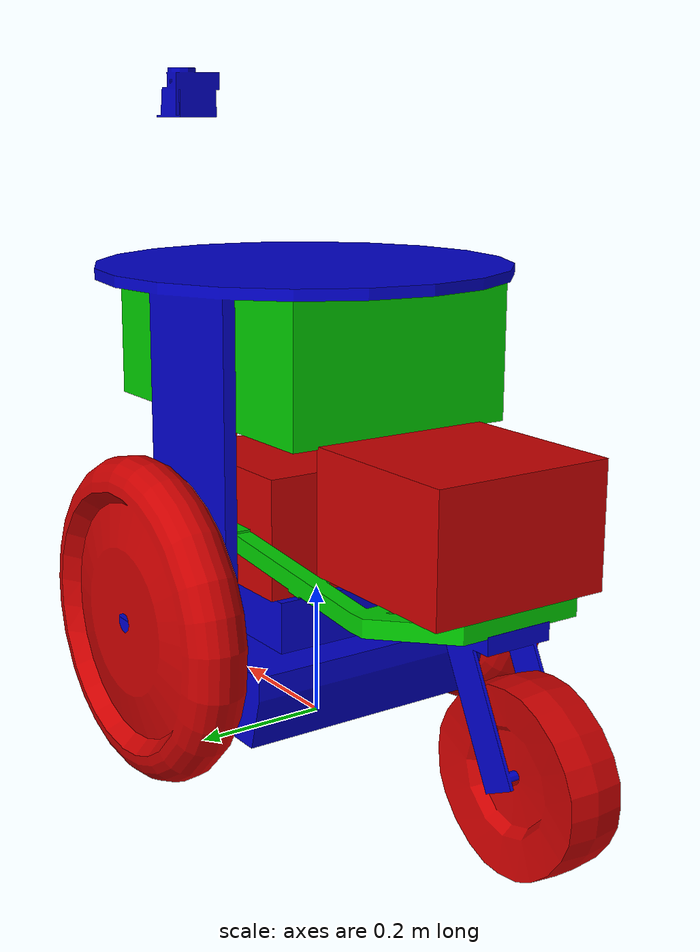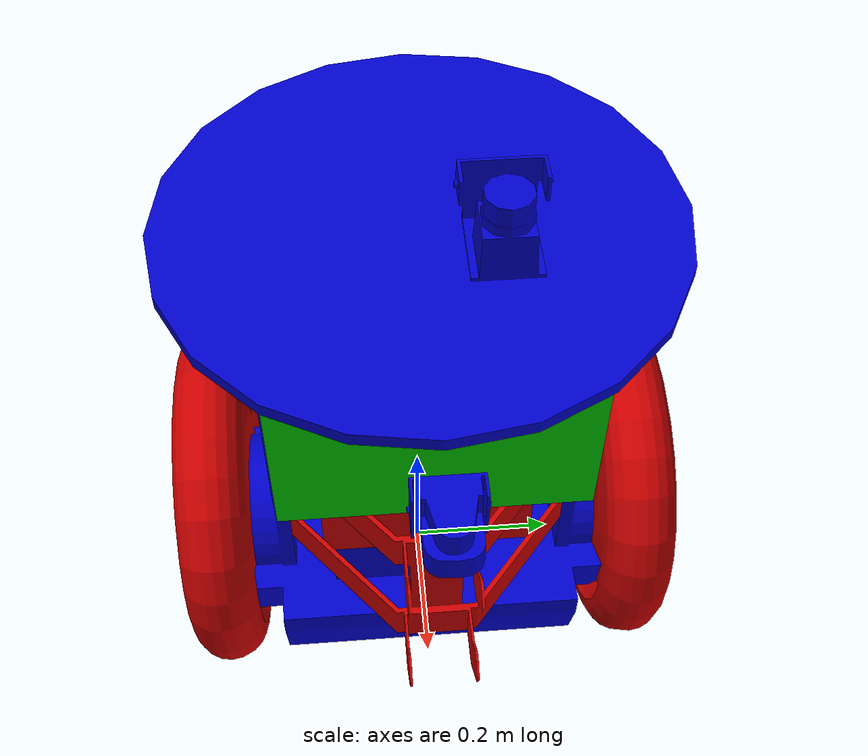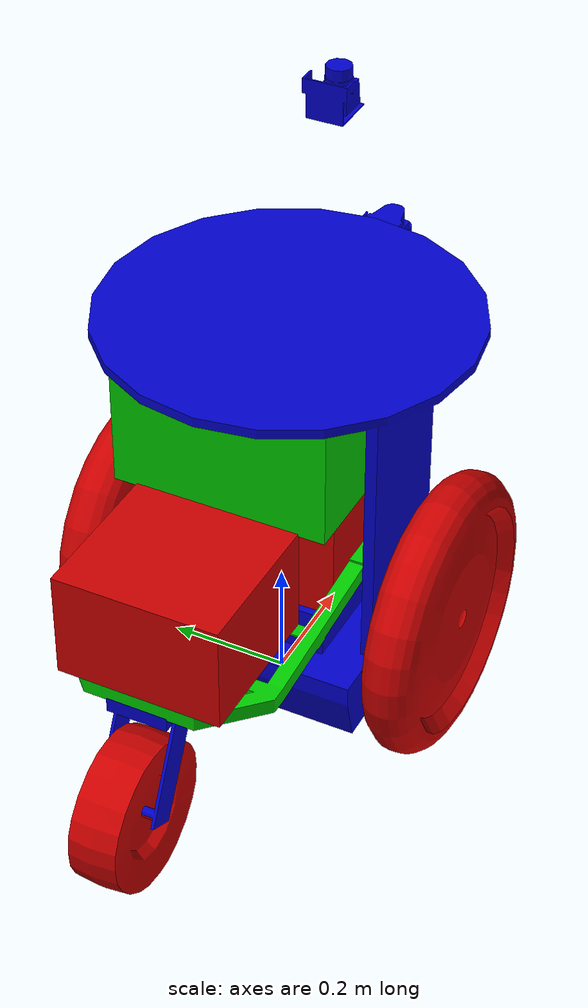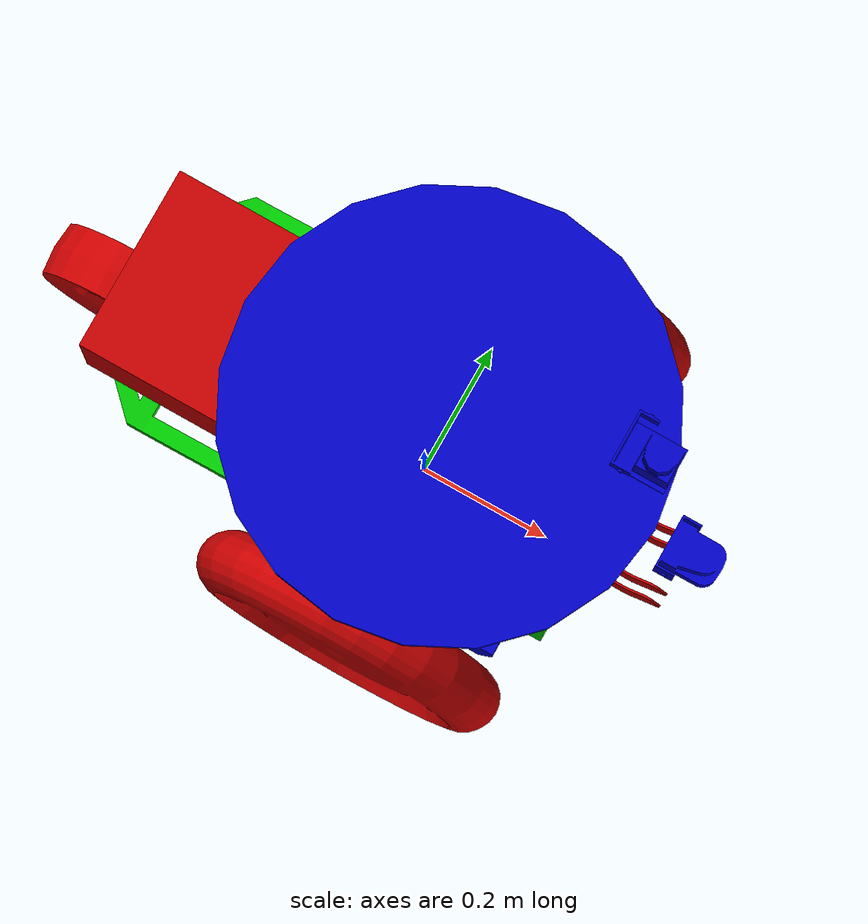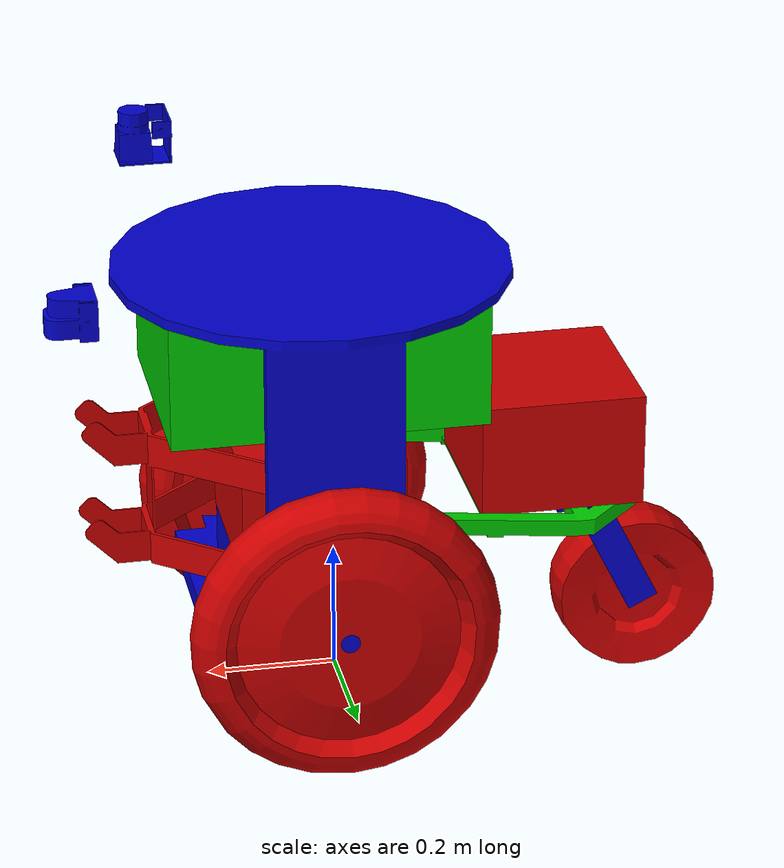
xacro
<?xml version="1.0"?>
<robot name="segbot"
	xmlns:sensor="http://playerstage.sourceforge.net/gazebo/xmlschema/#sensor"
	xmlns:controller="http://playerstage.sourceforge.net/gazebo/xmlschema/#controller"
	xmlns:interface="http://playerstage.sourceforge.net/gazebo/xmlschema/#interface">

	<!-- include gazebo defs-->
	<include filename="$(find segbot_description)/urdf/gazebo.urdf"/>

	<!-- include base defs-->
	<include filename="$(find segbot_description)/urdf/base_table_mounted_laser.urdf"/>

	<!-- include sensors defs-->
	<include filename="$(find segbot_description)/urdf/sensors.urdf"/>
</robot>

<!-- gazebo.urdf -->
<robot name="gazebo"
	xmlns:sensor="http://playerstage.sourceforge.net/gazebo/xmlschema/#sensor"
	xmlns:controller="http://playerstage.sourceforge.net/gazebo/xmlschema/#controller"
	xmlns:interface="http://playerstage.sourceforge.net/gazebo/xmlschema/#interface">

  <material name="Blue">
    <color rgba="0.0 0.0 0.8 1.0"/>
  </material>
  <material name="Green">
    <color rgba="0.0 0.8 0.0 1.0"/>
  </material>
  <material name="Red">
    <color rgba="0.8 0.0 0.0 1.0"/>
  </material>
  <material name="White">
    <color rgba="0.0 0.0 0.0 1.0"/>
  </material>

  <gazebo>
    <controller:gazebo_ros_controller_manager name="gazebo_ros_controller_manager" plugin="libgazebo_ros_controller_manager.so">
      <alwaysOn>true</alwaysOn>
      <updateRate>1000.0</updateRate>
      <interface:audio name="gazebo_ros_controller_manager_dummy_iface" />
    </controller:gazebo_ros_controller_manager>
  </gazebo>

</robot>

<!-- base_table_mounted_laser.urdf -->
<robot name="base"
       xmlns:sensor="http://playerstage.sourceforge.net/gazebo/xmlschema/#sensor"
       xmlns:controller="http://playerstage.sourceforge.net/gazebo/xmlschema/#controller"
       xmlns:xacro="http://ros.org/wiki/fixme"
       xmlns:interface="http://playerstage.sourceforge.net/gazebo/xmlschema/#interface">>

<!-- JOINT LIMIT VALUES FOR EFFORT AND VELOCITY NEED TO BE ADDED FOR REVOLUTE AND CONTINUOUS JOINTS -->

  <!-- base_footprint is a fictitious link(frame) that is on the ground right below base_link origin,
       navigation stack dedpends on this frame -->
  <link name="base_footprint">
    <inertial>
      <mass value="0.000001" />
      <origin xyz="0 0 0" />
      <inertia ixx="0.01" ixy="0.0" ixz="0.0"
               iyy="0.01" iyz="0.0" izz="0.01" />
    </inertial>
    <visual>
      <origin xyz="0 0 0" rpy="0 0 0" />
      <geometry>
        <box size="0.0 0.0 0.0" />
      </geometry>

      <material name="Green" />
    </visual>
    <collision>
      <!-- represent base collision with a simple rectangular model, positioned by base_size_z s.t. top
           surface of the collision box matches the top surface of the PR2 base -->
      <origin xyz="0 0 0" rpy="0 0 0" />
      <geometry>
        <box size="0.00 0.00 0.00" />
      </geometry>
    </collision>
  </link>

  <!-- Base -->

  <!-- Links -->
  <link name="base_link">
    <inertial>
      <origin xyz="0 -0.3 0" rpy="0 0 0" />
      <mass value="90.72"/>
      <inertia ixx="1.2285"  ixy="0"  ixz="0" iyy="1.961064" iyz="0" izz="1.337364" />
    </inertial>

    <visual>
      <origin xyz="0 0 0" rpy="0 0 0" />
      <geometry name="segway_base_geom">
        <mesh filename="package://segway_robot/meshes/segway_base.stl" />
      </geometry>
      <material name="Blue" />
    </visual>

    <collision>
      <origin xyz="0 0 0" rpy="0 0 0" />
      <geometry name="segway_base_collision_geom">
      <mesh filename="package://segway_robot/meshes/convex/segway_base_convex.stlb" />
      </geometry>
    </collision>

  </link>

  <link name="segway_left_wheel">
    <inertial>
      <origin xyz="0 0 0" rpy="0 0 0" />
      <mass value="3.87"/>
      <inertia ixx="0.0852"  ixy="0"  ixz="0" iyy="0.0852" iyz="0" izz="0.1654" />
    </inertial>

    <visual>
      <origin xyz="0 0 0" rpy="0 0 0" />
      <geometry name="segway_left_wheel_geom">
        <mesh filename="package://segway_robot/meshes/segway_wheel.stl" />
      </geometry>
      <material name="Red" />
    </visual>

    <collision>
      <origin xyz="0 0 0" rpy="0 0 0" />
      <geometry name="segway_left_wheel_collision_geom">
      	<cylinder radius="0.2365" length="0.093"/>
      </geometry>
    </collision>

  </link>

  <link name="segway_right_wheel">
    <inertial>
      <origin xyz="0 0 0" rpy="0 0 0" />
      <mass value="3.87"/>
      <inertia ixx="0.0852"  ixy="0"  ixz="0" iyy="0.0852" iyz="0" izz="0.1654" />
    </inertial>

    <visual>
      <origin xyz="0 0 0" rpy="0 0 0" />
      <geometry name="segway_right_wheel_geom">
        <mesh filename="package://segway_robot/meshes/segway_wheel.stl"/>
      </geometry>
      <material name="Red" />
    </visual>

    <collision>
      <origin xyz="0 0 0" rpy="0 0 0" />
      <geometry name="segway_right_wheel_collision_geom">
      	<cylinder radius="0.2365" length="0.093"/>
      </geometry>
    </collision>

  </link>

  <link name="segway_trailer">
    <inertial>
      <origin xyz="0.15 0.075 0" rpy="0 0 0" />
      <mass value="34.54"/>
      <inertia ixx="0.288"  ixy="0"  ixz="0" iyy="0.547" iyz="0" izz="0.446" />
    </inertial>

    <visual>
      <origin xyz="0 0 0" rpy="0 0 0" />
      <geometry name="segway_trailer-geom">
          <mesh filename="package://segway_robot/meshes/trailer.stl" />
      </geometry>
      <material name="Green" />
    </visual>

    <collision>
      <origin xyz="0 0 0" rpy="0 0 0" />
      <geometry name="segway_trailer_collision_geom">
        <mesh filename="package://segway_robot/meshes/convex/trailer_convex.stlb" />
      </geometry>
    </collision>

  </link>

  <link name="segway_trailer_wheel_caster">
    <inertial>
      <origin xyz="0 0 0" rpy="0 0 0" />
      <mass value="1.2"/>
      <inertia ixx="0.01"  ixy="0"  ixz="0" iyy="0.01" iyz="0" izz="0.01" />
    </inertial>

    <visual>
      <origin xyz="0 0 0" rpy="0 0 0" />
      <geometry name="segway_trailer_wheel_caster-geom">
          <mesh filename="package://segway_robot/meshes/trailer_wheel_caster.stl" />
      </geometry>
      <material name="Blue" />
    </visual>

    <collision>
      <origin xyz="0 0 0" rpy="0 0 0" />
      <geometry name="segway_trailer_wheel_caster_collision_geom">
        <mesh filename="package://segway_robot/meshes/convex/trailer_wheel_caster_convex.stlb" />
      </geometry>
    </collision>

  </link>

  <link name="segway_trailer_wheel">
    <inertial>
      <origin xyz="0 0 0" rpy="0 0 0" />
      <mass value="2.5"/>
      <inertia ixx="0.042"  ixy="0"  ixz="0" iyy="0.042" iyz="0" izz="0.082" />
    </inertial>

    <visual>
      <origin xyz="0 0 0" rpy="0 0 0" />
      <geometry name="segway_trailer_wheel-geom">
          <mesh filename="package://segway_robot/meshes/trailer_wheel.stl" />
      </geometry>
      <material name="Red" />
    </visual>

    <collision>
      <origin xyz="0 0 0" rpy="0 0 0" />
      <geometry name="segway_trailer_wheel_collision_geom">
        <cylinder radius="0.1285" length="0.097"/>
      </geometry>
    </collision>

  </link>

  <link name="battery_one">
    <inertial>
      <origin xyz="0 0 0" rpy="0 0 0" />
      <mass value="22.68"/>
      <inertia ixx="0.201"  ixy="0"  ixz="0" iyy="0.263" iyz="0" izz="0.182" />
    </inertial>

    <visual>
      <origin xyz="0 0 0" rpy="0 0 0" />
      <geometry name="battery_one_geom">
	<box size = "0.254 0.178 0.273" />
      </geometry>
      <material name="Red" />
    </visual>

    <collision>
      <origin xyz="0 0 0" rpy="0 0 0" />
      <geometry name="battery_one_collision_geom">
	<box size = "0.254 0.178 0.273" />
      </geometry>
    </collision>

  </link>

  <link name="battery_two">
    <inertial>
      <origin xyz="0 0 0" rpy="0 0 0" />
      <mass value="22.68"/>
      <inertia ixx="0.201"  ixy="0"  ixz="0" iyy="0.263" iyz="0" izz="0.182" />
    </inertial>

    <visual>
      <origin xyz="0 0 0" rpy="0 0 0" />
      <geometry name="battery_two_geom">
	<box size = "0.254 0.178 0.273" />
      </geometry>
      <material name="Red" />
    </visual>

    <collision>
      <origin xyz="0 0 0" rpy="0 0 0" />
      <geometry name="battery_two_collision_geom">
	<box size = "0.254 0.178 0.273" />
      </geometry>
    </collision>

  </link>

  <link name="computer">
    <inertial>
      <origin xyz="0 0 0" rpy="0 0 0" />
      <mass value="4.54"/>
      <inertia ixx="0.063"  ixy="0"  ixz="0" iyy="0.136" iyz="0" izz="0.103" />
    </inertial>

    <visual>
      <origin xyz="0 0 0" rpy="0 0 0" />
      <geometry name="computer_geom">
	<box size = "0.484 0.198 0.356" />
      </geometry>
      <material name="Green" />
    </visual>

    <collision>
      <origin xyz="0 0 0" rpy="0 0 0" />
      <geometry name="segway_base_collision_geom">
	<box size = "0.484 0.198 0.356" />
      </geometry>
    </collision>

  </link>

  <link name="segway_laser_bracket">
    <inertial>
      <origin xyz="0 0 0" rpy="0 0 0" />
      <mass value="2.27"/>
      <inertia ixx="0.01"  ixy="0"  ixz="0" iyy="0.01" iyz="0" izz="0.01" />
    </inertial>

    <visual>
      <origin xyz="0 0 0" rpy="0 0 0" />
      <geometry name="segway_laser_bracket-geom">
          <mesh filename="package://segway_robot/meshes/laser_bracket.stl" />
      </geometry>
      <material name="Red" />
    </visual>

    <collision>
      <origin xyz="0 0 0" rpy="0 0 0" />
      <geometry name="segway_laser_bracket_collision_geom">
      <mesh filename="package://segway_robot/meshes/convex/laser_bracket_convex.stlb" />
      </geometry>
    </collision>

  </link>

  <link name="R283_hokuyo_laser1">
    <inertial>
      <origin xyz="-0.025 -0.017 0" rpy="0 0 0" />
      <mass value="0.37"/>
      <inertia ixx="0.0004"  ixy="0"  ixz="0" iyy="0.0004" iyz="0" izz="0.0004" />
    </inertial>

    <visual>
      <origin xyz="0 0 0" rpy="0 0 0" />
      <geometry name="R283_hokuyo_laser1-geom">
          <mesh filename="package://segway_robot/meshes/R283_hokuyo_laser1.stl" />
      </geometry>
      <material name="Blue" />
    </visual>

    <collision>
      <origin xyz="0 0 0" rpy="0 0 0" />
      <geometry name="R283_hokuyo_laser1_collision_geom">
      <mesh filename="package://segway_robot/meshes/convex/R283_hokuyo_laser1_convex.stlb" />
      </geometry>
    </collision>

  </link>

  <link name="R313_hokuyo_laser2">
    <inertial>
      <origin xyz="-0.023 0 0" rpy="3.14159 0 0" />
      <mass value="0.37"/>
      <inertia ixx="0.0004"  ixy="0"  ixz="0" iyy="0.0004" iyz="0" izz="0.0004" />
    </inertial>

    <visual>
      <origin xyz="0 0 0" rpy="3.14159 0 0" />
      <geometry name="R313_hokuyo_laser2-geom">
          <mesh filename="package://segway_robot/meshes/R313_hokuyo_laser2.stl" />
      </geometry>
      <material name="Blue" />
    </visual>

    <collision>
      <origin xyz="0 0 0" rpy="3.14159 0 0" />
      <geometry name="R283_hokuyo_laser1_collision_geom">
      <mesh filename="package://segway_robot/meshes/convex/R313_hokuyo_laser2_convex.stlb" />
      </geometry>
    </collision>

  </link>

  <!-- Joints -->

  <joint name="base_footprint_joint" type="fixed">
    <origin xyz="0 0 0.55" rpy="1.57 0 3.14" />
    <child link="base_link" />
    <parent link="base_footprint"/>
  </joint>

  <joint name="segway_left_wheel_joint" type="continuous" >
    <origin xyz="-0.031 -0.353 0.272" rpy="0 0 0"/>
    <axis xyz="0 0 1"/>
    <limit effort="122" velocity="500"/>
    <parent link="base_link" />
    <child link="segway_left_wheel" />
    <calibration reference_position="0.0"/>
  </joint>

  <joint name="segway_right_wheel_joint" type="continuous" >
    <origin xyz="-0.031 -0.353 -0.272" rpy="0 3.14 0"/>
    <axis xyz="0 0 1"/>
    <limit effort="122" velocity="500"/>
    <parent link="base_link" />
    <child link="segway_right_wheel" />
    <calibration reference_position="0.0"/>
  </joint>

  <joint name="segway_trailer_joint" type="fixed">
    <origin xyz="0.162 -0.233 0.002" rpy="0 0 0" />
    <parent link="base_link" />
    <child link="segway_trailer" />
    <calibration reference_position="0.0"/>
  </joint>

  <joint name="segway_trailer_wheel_caster_joint" type="continuous">
    <origin xyz="0.244 -0.038 0.002" rpy="0 0 0" />
    <axis xyz="0 1 0"/>
    <parent link="segway_trailer" />
    <child link="segway_trailer_wheel_caster" />
    <calibration reference_position="0.0"/>
  </joint>

  <joint name="segway_trailer_wheel_joint" type="continuous">
    <origin xyz="0.076 -0.187 0.002" rpy="0 0 0" />
    <axis xyz="0 0 1"/>
    <parent link="segway_trailer_wheel_caster" />
    <child link="segway_trailer_wheel" />
    <calibration reference_position="0.0"/>
  </joint>

  <joint name="battery_one_joint" type="fixed">
    <origin xyz="-0.037 -0.231 0" rpy="0 0 0" />
    <parent link="base_link" />
    <child link="battery_one" />
    <calibration reference_position="0.0"/>
  </joint>

  <joint name="battery_two_joint" type="fixed">
    <origin xyz="0.171 0.074 0" rpy="0 0 0" />
    <parent link="segway_trailer" />
    <child link="battery_two" />
    <calibration reference_position="0.0"/>
  </joint>

  <joint name="computer_joint" type="fixed">
    <origin xyz="-0.033 0.025 0" rpy="0 0 0" />
    <parent link="base_link" />
    <child link="computer" />
    <calibration reference_position="0.0"/>
  </joint>

  <joint name="segway_laser_bracket_joint" type="fixed">
    <origin xyz="-0.213 -0.2 0.002" rpy="0 0 0" />
    <parent link="base_link" />
    <child link="segway_laser_bracket" />
    <calibration reference_position="0.0"/>
  </joint>

  <joint name="R283_hokuyo_laser1_joint" type="revolute">
    <origin xyz="-0.052 0.598 0.05" rpy="0 0 0" />
    <axis xyz="0 0 1"/>
    <limit lower="-1.047" upper="1.047" effort="50" velocity="50"/>
    <parent link="segway_laser_bracket" />
    <child link="R283_hokuyo_laser1" />
    <calibration reference_position="0.0"/>
  </joint>

  <joint name="R313_hokuyo_laser2_joint" type="revolute">
    <origin xyz="-0.162 0.283 0" rpy="3.14159 0 0" />
    <axis xyz="0 0 1"/>
    <limit lower="-1.047" upper="1.047" effort="50" velocity="50"/>
    <parent link="segway_laser_bracket" />
    <child link="R313_hokuyo_laser2" />
    <calibration reference_position="0.0"/>
  </joint>

  <!-- Gazebo uses this to color -->

  <gazebo reference="base_link">
    <material value="Gazebo/Blue"/>
    <turnGravityOff>false</turnGravityOff>
  </gazebo>

  <gazebo reference="segway_left_wheel">
    <material value="Gazebo/Red"/>
    <turnGravityOff>false</turnGravityOff>
  </gazebo>

  <gazebo reference="segway_right_wheel">
    <material value="Gazebo/Red"/>
    <turnGravityOff>false</turnGravityOff>
  </gazebo>

  <gazebo reference="segway_trailer">
    <material value="Gazebo/Green"/>
    <turnGravityOff>false</turnGravityOff>
  </gazebo>

  <gazebo reference="segway_trailer_wheel_caster">
    <material value="Gazebo/Blue"/>
    <turnGravityOff>false</turnGravityOff>
  </gazebo>

  <gazebo reference="segway_trailer_wheel">
    <material value="Gazebo/Red"/>
    <turnGravityOff>false</turnGravityOff>
  </gazebo>

  <gazebo reference="battery_one">
    <material value="Gazebo/Red"/>
    <turnGravityOff>false</turnGravityOff>
  </gazebo>

  <gazebo reference="battery_two">
    <material value="Gazebo/Red"/>
    <turnGravityOff>false</turnGravityOff>
  </gazebo>

  <gazebo reference="computer">
    <material value="Gazebo/Green"/>
    <turnGravityOff>false</turnGravityOff>
  </gazebo>

  <gazebo reference="segway_laser_bracket">
    <material value="Gazebo/Green"/>
    <turnGravityOff>false</turnGravityOff>
  </gazebo>

  <gazebo reference="R283_hokuyo_laser1">
    <material value="Gazebo/Red"/>
    <turnGravityOff>false</turnGravityOff>
  </gazebo>

  <gazebo reference="R313_hokuyo_laser2">
    <material value="Gazebo/Red"/>
    <turnGravityOff>false</turnGravityOff>
  </gazebo>

  <!-- Transmits the joints -->

  <transmission name="segway_left_wheel_trans" type="SimpleTransmission">
    <actuator name="segway_left_wheel_motor"/>
    <joint name="segway_left_wheel_joint"/>
    <mechanicalReduction>1.0</mechanicalReduction>
  </transmission>

  <transmission name="segway_right_wheel_trans" type="SimpleTransmission">
    <actuator name="segway_right_wheel_motor"/>
    <joint name="segway_right_wheel_joint"/>
    <mechanicalReduction>1.0</mechanicalReduction>
  </transmission>

  <transmission name="segway_trailer_wheel_caster_trans" type="SimpleTransmission">
    <actuator name="segway_trailer_wheel_caster_motor"/>
    <joint name="segway_trailer_wheel_caster_joint"/>
    <mechanicalReduction>1.0</mechanicalReduction>
  </transmission>

  <transmission name="segway_trailer_wheel_trans" type="SimpleTransmission">
    <actuator name="segway_trailer_wheel_motor"/>
    <joint name="segway_trailer_wheel_joint"/>
    <mechanicalReduction>1.0</mechanicalReduction>
  </transmission>

  <transmission name="R283_hokuyo_laser1_trans" type="SimpleTransmission">
    <actuator name="R283_hokuyo_laser1_motor"/>
    <joint name="R283_hokuyo_laser1_joint"/>
    <mechanicalReduction>1.0</mechanicalReduction>
  </transmission>

  <transmission name="R313_hokuyo_laser2_trans" type="SimpleTransmission">
    <actuator name="R313_hokuyo_laser2_motor"/>
    <joint name="R313_hokuyo_laser2_joint"/>
    <mechanicalReduction>1.0</mechanicalReduction>
  </transmission>

  <gazebo>
    <controller:gazebo_ros_p3d name="p3d_base_controller" plugin="libgazebo_ros_p3d.so">
      <alwaysOn>true</alwaysOn>
      <updateRate>100.0</updateRate>
      <bodyName>base_footprint</bodyName>
      <topicName>base_pose_ground_truth</topicName>
      <gaussianNoise>0.01</gaussianNoise>
      <frameName>map</frameName>
      <xyzOffsets>25.7 25.7 0</xyzOffsets> <!-- initialize odometry for fake localization-->
      <rpyOffsets>0 0 0</rpyOffsets>
      <interface:position name="p3d_base_position"/>
    </controller:gazebo_ros_p3d>
    <canonicalBody>base_footprint</canonicalBody>
  </gazebo>

</robot>

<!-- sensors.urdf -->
<robot name="hand"
       xmlns:sensor="http://playerstage.sourceforge.net/gazebo/xmlschema/#sensor"
       xmlns:controller="http://playerstage.sourceforge.net/gazebo/xmlschema/#controller"
       xmlns:xacro="http://ros.org/wiki/fixme"
       xmlns:interface="http://playerstage.sourceforge.net/gazebo/xmlschema/#interface">>

<!-- JOINT LIMIT VALUES FOR EFFORT AND VELOCITY NEED TO BE ADDED FOR REVOLUTE AND CONTINUOUS JOINTS -->

  <!-- Laser base laser -->
  <!-- Joint to world. Simply change the name and parent link when attaching to own robot -->
  <joint name="base_laser_joint" type="fixed">
      <origin xyz="-0.057 0.010 0" rpy="1.57 0 3.14" />
      <parent link="R283_hokuyo_laser1"/>
      <child link="base_laser_link"/>
    </joint>

  <!--			 Laser body. Neglegibe geometry 			-->
  <link name="base_laser_link" type="laser">

      <inertial>
        <mass value="0.000001" />
        <origin xyz="0 0 0" rpy="0 0 0" />
        <inertia ixx="0.0001" ixy="0" ixz="0" iyy="0.000001" iyz="0" izz="0.0001" />
      </inertial>
      <visual>
        <origin xyz="0 0 0" rpy="0 0 0" />
        <geometry>
          <box size="0.000 0.000 0.000" />
        </geometry>
        <material name="Red" />
      </visual>
      <collision>
        <origin xyz="0 0 0" rpy="0 0 0" />
        <geometry>
          <box size=".000 .000 .00" />
        </geometry>
      </collision>

    </link>

<!-- 			Actual laser		 -->
    <gazebo reference="base_laser_link">
      <sensor:ray name="base_laser">
        <rayCount>1080</rayCount>
        <rangeCount>1080</rangeCount>
        <laserCount>1</laserCount>

        <origin>0.0 0.0 0.0</origin>
        <displayRays>false</displayRays>

        <minAngle>-120</minAngle>
        <maxAngle> 119</maxAngle>

        <minRange>0.05</minRange>
        <maxRange>10.0</maxRange>
        <resRange>0.01</resRange>
        <updateRate>20.0</updateRate>

        <controller:gazebo_ros_laser name="gazebo_ros_base_laser_controller" plugin="libgazebo_ros_laser.so">
          <gaussianNoise>0.005</gaussianNoise>
          <alwaysOn>true</alwaysOn>
          <updateRate>20.0</updateRate>
          <topicName>scan</topicName>
          <frameName>base_laser_link</frameName>
          <interface:laser name="gazebo_ros_base_laser_iface"/>
        </controller:gazebo_ros_laser>
      </sensor:ray>
    </gazebo>

  <!-- Laser tilt laser -->
  <!-- Joint to world. Simply change the name and parent link when attaching to own robot -->
  <joint name="tilt_laser_joint" type="fixed">
      <origin xyz="-0.056 -0.020 0" rpy="-1.57 0 3.14" />
      <parent link="R313_hokuyo_laser2"/>
      <child link="tilt_laser_link"/>
    </joint>

  <!--			 Laser body. Neglegibe geometry 			-->
  <link name="tilt_laser_link" type="laser">

      <inertial>
        <mass value="0.000001" />
        <origin xyz="0 0 0" rpy="0 0 0" />
        <inertia ixx="0.0001" ixy="0" ixz="0" iyy="0.000001" iyz="0" izz="0.0001" />
      </inertial>
      <visual>
        <origin xyz="0 0 0" rpy="0 0 0" />
        <geometry>
          <box size="0 0 0" />
        </geometry>
        <material name="Red" />
      </visual>
      <collision>
        <origin xyz="0 0 0" rpy="0 0 0" />
        <geometry>
          <box size="0 0 0" />
        </geometry>
      </collision>

    </link>

<!-- 			Actual laser		 -->
<gazebo reference="tilt_laser_link">
      <sensor:ray name="tilt_laser">
        <rayCount>1080</rayCount>
        <rangeCount>1080</rangeCount>
        <laserCount>1</laserCount>

        <origin>0.0 0.0 0.0</origin>
        <displayRays>false</displayRays>

        <minAngle>-130</minAngle>
        <maxAngle> 130</maxAngle>

        <minRange>0.05</minRange>
        <maxRange>10.0</maxRange>
        <resRange>0.01</resRange>
        <updateRate>20.0</updateRate>

        <controller:gazebo_ros_laser name="gazebo_ros_tilt_laser_controller" plugin="libgazebo_ros_laser.so">
          <gaussianNoise>0.005</gaussianNoise>
          <alwaysOn>true</alwaysOn>
          <updateRate>20.0</updateRate>
          <topicName>tilt_scan</topicName>
          <frameName>tilt_laser_link</frameName>
          <interface:laser name="gazebo_ros_tilt_laser_iface"/>
        </controller:gazebo_ros_laser>
      </sensor:ray>
</gazebo>

</robot>
